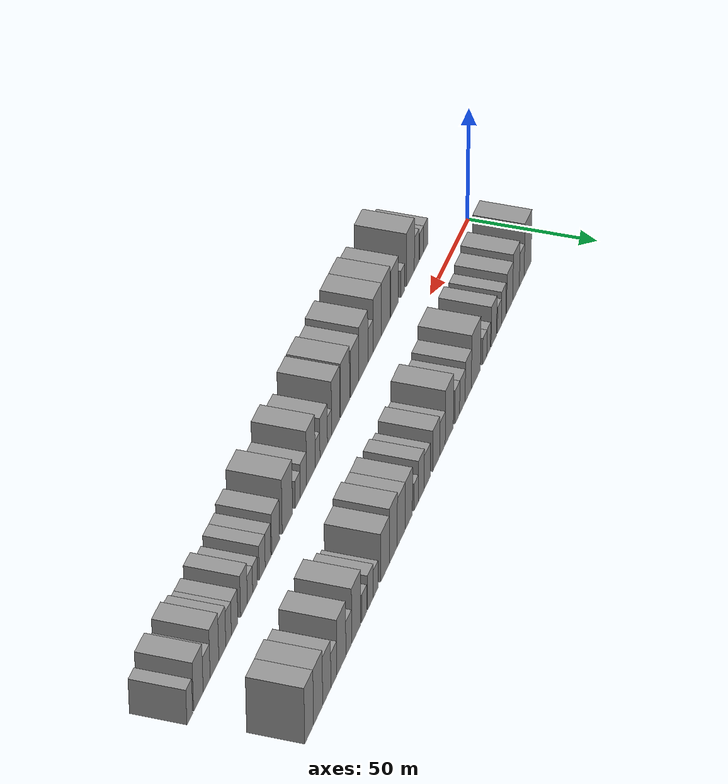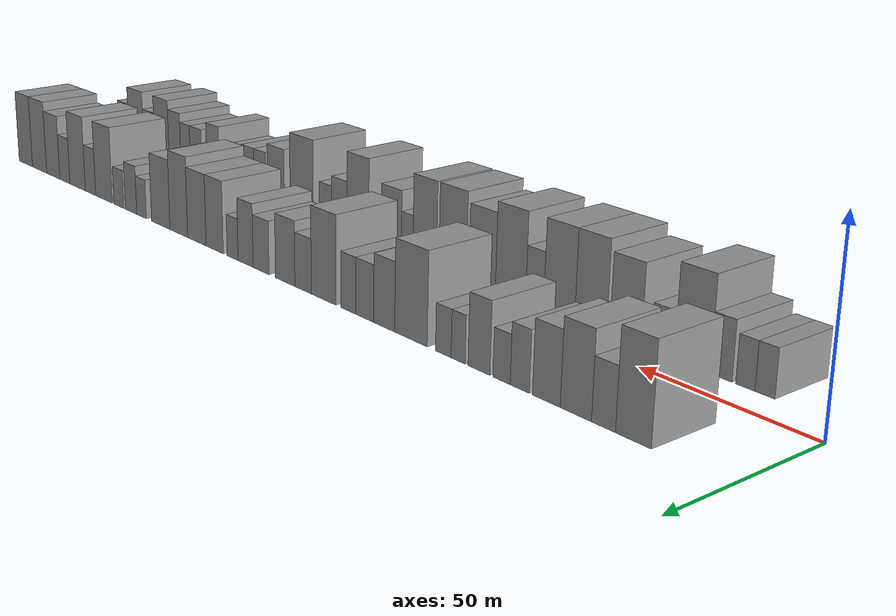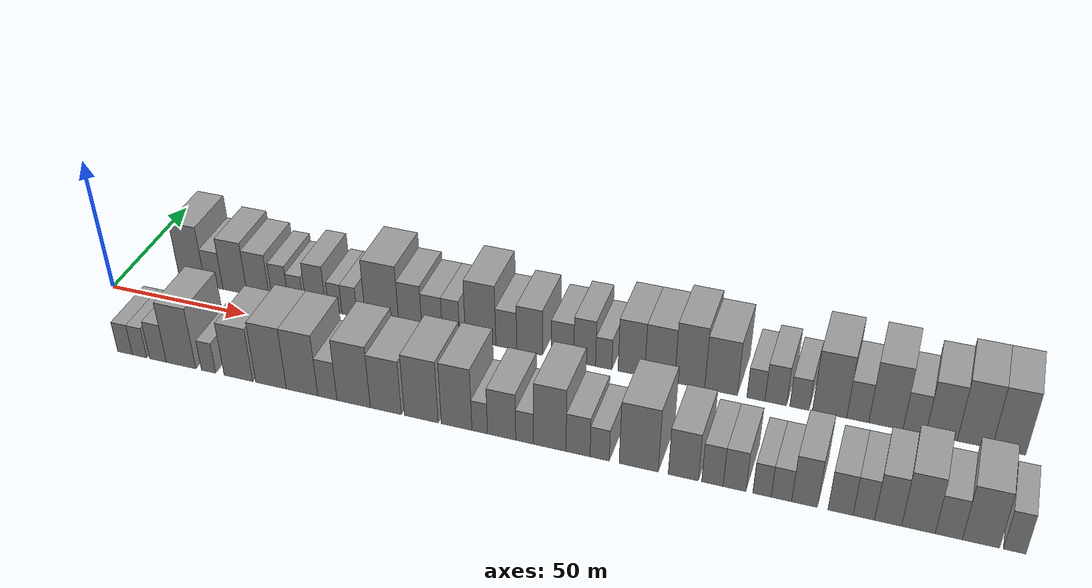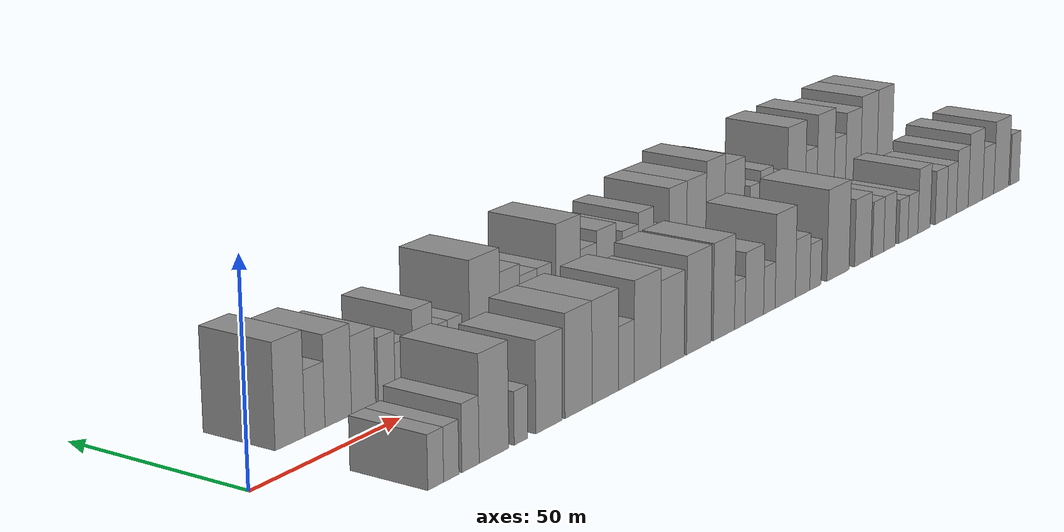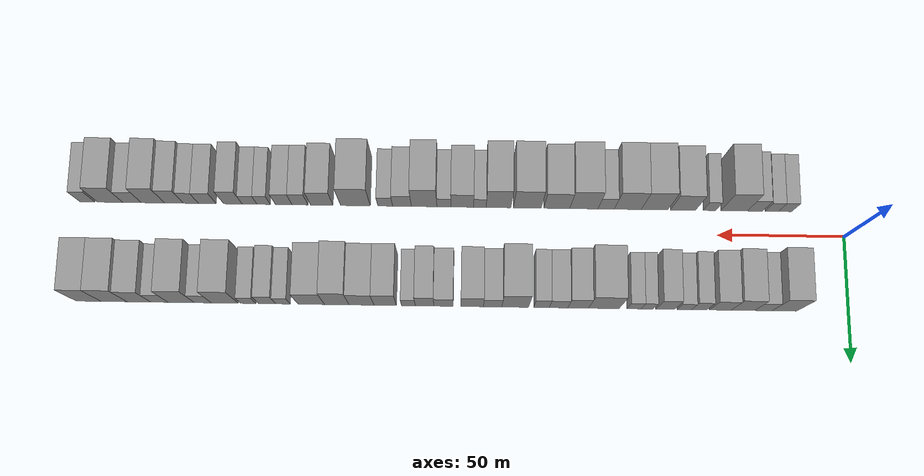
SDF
<sdf version="1.6">
 <world name="default">
  <scene>
   <sky><clouds><speed>12</speed></clouds></sky>
   <ambient>0.4 0.4 0.4 1</ambient>
   <background>0.7 0.7 0.7 1</background>
   <shadows>1</shadows>
  </scene>
  <gravity>0 0 -9.8066</gravity>
  <magnetic_field>6e-06 2.3e-05 -4.2e-05</magnetic_field>
  <physics default="0" name="default_physics" type="ode">
   <ode>
    <solver>
     <type>quick</type>
     <iters>10</iters>
     <sor>1.0</sor>
     <use_dynamic_moi_rescaling>0</use_dynamic_moi_rescaling>
    </solver>
    <constraints>
     <cfm>0</cfm>
     <erp>0.2</erp>
     <contact_max_correcting_vel>100</contact_max_correcting_vel>
     <contact_surface_layer>0.001</contact_surface_layer>
    </constraints>
   </ode>
   <max_step_size>0.004</max_step_size>
   <real_time_factor>1</real_time_factor>
   <real_time_update_rate>250</real_time_update_rate>
  </physics>
  <light name="sun" type="directional">
   <pose>0 0 10 0 0 0</pose>
   <diffuse>0.8 0.8 0.8 1</diffuse>
   <specular>0.2 0.2 0.2 1</specular>
   <attenuation>
    <range>1000</range>
    <constant>0.9</constant>
    <linear>0.01</linear>
    <quadratic>0.001</quadratic>
   </attenuation>
   <direction>-0.5 0.1 -0.9</direction>
  </light>
  <model name="building_1">
   <static>1</static>
   <pose>24.8672 20.0000 0 0.000000 0.000000 1.570796</pose>
   <link name="link">
    <pose>0 0 12.00 0 0 0</pose>
    <collision name="collision"><geometry><box><size>20.0000 9.7345 24.0000</size></box></geometry></collision>
    <visual name="visual">
     <cast_shadows>0</cast_shadows>
     <geometry><box><size>20.0000 9.7345 24.0000</size></box></geometry>
     <material>
      <script>
       <uri>model://grey_wall/materials/scripts</uri>
       <uri>model://grey_wall/materials/textures</uri>
       <name>vrc/grey_wall</name>
      </script>
     </material>
    </visual>
   </link>
  </model>
  <model name="building_2">
   <static>1</static>
   <pose>33.1002 20.0000 0 0.000000 0.000000 1.570796</pose>
   <link name="link">
    <pose>0 0 7.50 0 0 0</pose>
    <collision name="collision"><geometry><box><size>20.0000 6.7314 15.0000</size></box></geometry></collision>
    <visual name="visual">
     <cast_shadows>0</cast_shadows>
     <geometry><box><size>20.0000 6.7314 15.0000</size></box></geometry>
     <material>
      <script>
       <uri>model://grey_wall/materials/scripts</uri>
       <uri>model://grey_wall/materials/textures</uri>
       <name>vrc/grey_wall</name>
      </script>
     </material>
    </visual>
   </link>
  </model>
  <model name="building_3">
   <static>1</static>
   <pose>41.0249 20.0000 0 0.000000 0.000000 1.570796</pose>
   <link name="link">
    <pose>0 0 10.50 0 0 0</pose>
    <collision name="collision"><geometry><box><size>20.0000 9.1180 21.0000</size></box></geometry></collision>
    <visual name="visual">
     <cast_shadows>0</cast_shadows>
     <geometry><box><size>20.0000 9.1180 21.0000</size></box></geometry>
     <material>
      <script>
       <uri>model://grey_wall/materials/scripts</uri>
       <uri>model://grey_wall/materials/textures</uri>
       <name>vrc/grey_wall</name>
      </script>
     </material>
    </visual>
   </link>
  </model>
  <model name="building_4">
   <static>1</static>
   <pose>49.7908 20.0000 0 0.000000 0.000000 1.570796</pose>
   <link name="link">
    <pose>0 0 9.00 0 0 0</pose>
    <collision name="collision"><geometry><box><size>20.0000 8.4137 18.0000</size></box></geometry></collision>
    <visual name="visual">
     <cast_shadows>0</cast_shadows>
     <geometry><box><size>20.0000 8.4137 18.0000</size></box></geometry>
     <material>
      <script>
       <uri>model://grey_wall/materials/scripts</uri>
       <uri>model://grey_wall/materials/textures</uri>
       <name>vrc/grey_wall</name>
      </script>
     </material>
    </visual>
   </link>
  </model>
  <model name="building_5">
   <static>1</static>
   <pose>58.0168 20.0000 0 0.000000 0.000000 1.570796</pose>
   <link name="link">
    <pose>0 0 7.50 0 0 0</pose>
    <collision name="collision"><geometry><box><size>20.0000 6.0384 15.0000</size></box></geometry></collision>
    <visual name="visual">
     <cast_shadows>0</cast_shadows>
     <geometry><box><size>20.0000 6.0384 15.0000</size></box></geometry>
     <material>
      <script>
       <uri>model://grey_wall/materials/scripts</uri>
       <uri>model://grey_wall/materials/textures</uri>
       <name>vrc/grey_wall</name>
      </script>
     </material>
    </visual>
   </link>
  </model>
  <model name="building_6">
   <static>1</static>
   <pose>63.8101 20.0000 0 0.000000 0.000000 1.570796</pose>
   <link name="link">
    <pose>0 0 6.00 0 0 0</pose>
    <collision name="collision"><geometry><box><size>20.0000 5.5482 12.0000</size></box></geometry></collision>
    <visual name="visual">
     <cast_shadows>0</cast_shadows>
     <geometry><box><size>20.0000 5.5482 12.0000</size></box></geometry>
     <material>
      <script>
       <uri>model://grey_wall/materials/scripts</uri>
       <uri>model://grey_wall/materials/textures</uri>
       <name>vrc/grey_wall</name>
      </script>
     </material>
    </visual>
   </link>
  </model>
  <model name="building_7">
   <static>1</static>
   <pose>71.2310 20.0000 0 0.000000 0.000000 1.570796</pose>
   <link name="link">
    <pose>0 0 9.00 0 0 0</pose>
    <collision name="collision"><geometry><box><size>20.0000 7.2935 18.0000</size></box></geometry></collision>
    <visual name="visual">
     <cast_shadows>0</cast_shadows>
     <geometry><box><size>20.0000 7.2935 18.0000</size></box></geometry>
     <material>
      <script>
       <uri>model://grey_wall/materials/scripts</uri>
       <uri>model://grey_wall/materials/textures</uri>
       <name>vrc/grey_wall</name>
      </script>
     </material>
    </visual>
   </link>
  </model>
  <model name="building_8">
   <static>1</static>
   <pose>78.2869 20.0000 0 0.000000 0.000000 1.570796</pose>
   <link name="link">
    <pose>0 0 6.00 0 0 0</pose>
    <collision name="collision"><geometry><box><size>20.0000 4.8183 12.0000</size></box></geometry></collision>
    <visual name="visual">
     <cast_shadows>0</cast_shadows>
     <geometry><box><size>20.0000 4.8183 12.0000</size></box></geometry>
     <material>
      <script>
       <uri>model://grey_wall/materials/scripts</uri>
       <uri>model://grey_wall/materials/textures</uri>
       <name>vrc/grey_wall</name>
      </script>
     </material>
    </visual>
   </link>
  </model>
  <model name="building_9">
   <static>1</static>
   <pose>83.4222 20.0000 0 0.000000 0.000000 1.570796</pose>
   <link name="link">
    <pose>0 0 6.00 0 0 0</pose>
    <collision name="collision"><geometry><box><size>20.0000 5.4523 12.0000</size></box></geometry></collision>
    <visual name="visual">
     <cast_shadows>0</cast_shadows>
     <geometry><box><size>20.0000 5.4523 12.0000</size></box></geometry>
     <material>
      <script>
       <uri>model://grey_wall/materials/scripts</uri>
       <uri>model://grey_wall/materials/textures</uri>
       <name>vrc/grey_wall</name>
      </script>
     </material>
    </visual>
   </link>
  </model>
  <model name="building_10">
   <static>1</static>
   <pose>95.1413 20.0000 0 0.000000 0.000000 1.570796</pose>
   <link name="link">
    <pose>0 0 12.00 0 0 0</pose>
    <collision name="collision"><geometry><box><size>20.0000 11.9859 24.0000</size></box></geometry></collision>
    <visual name="visual">
     <cast_shadows>0</cast_shadows>
     <geometry><box><size>20.0000 11.9859 24.0000</size></box></geometry>
     <material>
      <script>
       <uri>model://grey_wall/materials/scripts</uri>
       <uri>model://grey_wall/materials/textures</uri>
       <name>vrc/grey_wall</name>
      </script>
     </material>
    </visual>
   </link>
  </model>
  <model name="building_11">
   <static>1</static>
   <pose>105.1921 20.0000 0 0.000000 0.000000 1.570796</pose>
   <link name="link">
    <pose>0 0 9.00 0 0 0</pose>
    <collision name="collision"><geometry><box><size>20.0000 8.1156 18.0000</size></box></geometry></collision>
    <visual name="visual">
     <cast_shadows>0</cast_shadows>
     <geometry><box><size>20.0000 8.1156 18.0000</size></box></geometry>
     <material>
      <script>
       <uri>model://grey_wall/materials/scripts</uri>
       <uri>model://grey_wall/materials/textures</uri>
       <name>vrc/grey_wall</name>
      </script>
     </material>
    </visual>
   </link>
  </model>
  <model name="building_12">
   <static>1</static>
   <pose>112.8450 20.0000 0 0.000000 0.000000 1.570796</pose>
   <link name="link">
    <pose>0 0 7.50 0 0 0</pose>
    <collision name="collision"><geometry><box><size>20.0000 7.1903 15.0000</size></box></geometry></collision>
    <visual name="visual">
     <cast_shadows>0</cast_shadows>
     <geometry><box><size>20.0000 7.1903 15.0000</size></box></geometry>
     <material>
      <script>
       <uri>model://grey_wall/materials/scripts</uri>
       <uri>model://grey_wall/materials/textures</uri>
       <name>vrc/grey_wall</name>
      </script>
     </material>
    </visual>
   </link>
  </model>
  <model name="building_13">
   <static>1</static>
   <pose>119.4587 20.0000 0 0.000000 0.000000 1.570796</pose>
   <link name="link">
    <pose>0 0 7.50 0 0 0</pose>
    <collision name="collision"><geometry><box><size>20.0000 6.0371 15.0000</size></box></geometry></collision>
    <visual name="visual">
     <cast_shadows>0</cast_shadows>
     <geometry><box><size>20.0000 6.0371 15.0000</size></box></geometry>
     <material>
      <script>
       <uri>model://grey_wall/materials/scripts</uri>
       <uri>model://grey_wall/materials/textures</uri>
       <name>vrc/grey_wall</name>
      </script>
     </material>
    </visual>
   </link>
  </model>
  <model name="building_14">
   <static>1</static>
   <pose>129.6978 20.0000 0 0.000000 0.000000 1.570796</pose>
   <link name="link">
    <pose>0 0 12.00 0 0 0</pose>
    <collision name="collision"><geometry><box><size>20.0000 10.4410 24.0000</size></box></geometry></collision>
    <visual name="visual">
     <cast_shadows>0</cast_shadows>
     <geometry><box><size>20.0000 10.4410 24.0000</size></box></geometry>
     <material>
      <script>
       <uri>model://grey_wall/materials/scripts</uri>
       <uri>model://grey_wall/materials/textures</uri>
       <name>vrc/grey_wall</name>
      </script>
     </material>
    </visual>
   </link>
  </model>
  <model name="building_15">
   <static>1</static>
   <pose>138.4911 20.0000 0 0.000000 0.000000 1.570796</pose>
   <link name="link">
    <pose>0 0 7.50 0 0 0</pose>
    <collision name="collision"><geometry><box><size>20.0000 7.1457 15.0000</size></box></geometry></collision>
    <visual name="visual">
     <cast_shadows>0</cast_shadows>
     <geometry><box><size>20.0000 7.1457 15.0000</size></box></geometry>
     <material>
      <script>
       <uri>model://grey_wall/materials/scripts</uri>
       <uri>model://grey_wall/materials/textures</uri>
       <name>vrc/grey_wall</name>
      </script>
     </material>
    </visual>
   </link>
  </model>
  <model name="building_16">
   <static>1</static>
   <pose>146.4306 20.0000 0 0.000000 0.000000 1.570796</pose>
   <link name="link">
    <pose>0 0 9.00 0 0 0</pose>
    <collision name="collision"><geometry><box><size>20.0000 8.7334 18.0000</size></box></geometry></collision>
    <visual name="visual">
     <cast_shadows>0</cast_shadows>
     <geometry><box><size>20.0000 8.7334 18.0000</size></box></geometry>
     <material>
      <script>
       <uri>model://grey_wall/materials/scripts</uri>
       <uri>model://grey_wall/materials/textures</uri>
       <name>vrc/grey_wall</name>
      </script>
     </material>
    </visual>
   </link>
  </model>
  <model name="building_17">
   <static>1</static>
   <pose>157.5419 20.0000 0 0.000000 0.000000 1.570796</pose>
   <link name="link">
    <pose>0 0 7.50 0 0 0</pose>
    <collision name="collision"><geometry><box><size>20.0000 7.4892 15.0000</size></box></geometry></collision>
    <visual name="visual">
     <cast_shadows>0</cast_shadows>
     <geometry><box><size>20.0000 7.4892 15.0000</size></box></geometry>
     <material>
      <script>
       <uri>model://grey_wall/materials/scripts</uri>
       <uri>model://grey_wall/materials/textures</uri>
       <name>vrc/grey_wall</name>
      </script>
     </material>
    </visual>
   </link>
  </model>
  <model name="building_18">
   <static>1</static>
   <pose>164.9100 20.0000 0 0.000000 0.000000 1.570796</pose>
   <link name="link">
    <pose>0 0 9.00 0 0 0</pose>
    <collision name="collision"><geometry><box><size>20.0000 7.2470 18.0000</size></box></geometry></collision>
    <visual name="visual">
     <cast_shadows>0</cast_shadows>
     <geometry><box><size>20.0000 7.2470 18.0000</size></box></geometry>
     <material>
      <script>
       <uri>model://grey_wall/materials/scripts</uri>
       <uri>model://grey_wall/materials/textures</uri>
       <name>vrc/grey_wall</name>
      </script>
     </material>
    </visual>
   </link>
  </model>
  <model name="building_19">
   <static>1</static>
   <pose>171.2195 20.0000 0 0.000000 0.000000 1.570796</pose>
   <link name="link">
    <pose>0 0 6.00 0 0 0</pose>
    <collision name="collision"><geometry><box><size>20.0000 5.3720 12.0000</size></box></geometry></collision>
    <visual name="visual">
     <cast_shadows>0</cast_shadows>
     <geometry><box><size>20.0000 5.3720 12.0000</size></box></geometry>
     <material>
      <script>
       <uri>model://grey_wall/materials/scripts</uri>
       <uri>model://grey_wall/materials/textures</uri>
       <name>vrc/grey_wall</name>
      </script>
     </material>
    </visual>
   </link>
  </model>
  <model name="building_20">
   <static>1</static>
   <pose>180.2682 20.0000 0 0.000000 0.000000 1.570796</pose>
   <link name="link">
    <pose>0 0 10.50 0 0 0</pose>
    <collision name="collision"><geometry><box><size>20.0000 8.7254 21.0000</size></box></geometry></collision>
    <visual name="visual">
     <cast_shadows>0</cast_shadows>
     <geometry><box><size>20.0000 8.7254 21.0000</size></box></geometry>
     <material>
      <script>
       <uri>model://grey_wall/materials/scripts</uri>
       <uri>model://grey_wall/materials/textures</uri>
       <name>vrc/grey_wall</name>
      </script>
     </material>
    </visual>
   </link>
  </model>
  <model name="building_21">
   <static>1</static>
   <pose>189.4746 20.0000 0 0.000000 0.000000 1.570796</pose>
   <link name="link">
    <pose>0 0 10.50 0 0 0</pose>
    <collision name="collision"><geometry><box><size>20.0000 9.6873 21.0000</size></box></geometry></collision>
    <visual name="visual">
     <cast_shadows>0</cast_shadows>
     <geometry><box><size>20.0000 9.6873 21.0000</size></box></geometry>
     <material>
      <script>
       <uri>model://grey_wall/materials/scripts</uri>
       <uri>model://grey_wall/materials/textures</uri>
       <name>vrc/grey_wall</name>
      </script>
     </material>
    </visual>
   </link>
  </model>
  <model name="building_22">
   <static>1</static>
   <pose>199.1271 20.0000 0 0.000000 0.000000 1.570796</pose>
   <link name="link">
    <pose>0 0 12.00 0 0 0</pose>
    <collision name="collision"><geometry><box><size>20.0000 9.6176 24.0000</size></box></geometry></collision>
    <visual name="visual">
     <cast_shadows>0</cast_shadows>
     <geometry><box><size>20.0000 9.6176 24.0000</size></box></geometry>
     <material>
      <script>
       <uri>model://grey_wall/materials/scripts</uri>
       <uri>model://grey_wall/materials/textures</uri>
       <name>vrc/grey_wall</name>
      </script>
     </material>
    </visual>
   </link>
  </model>
  <model name="building_23">
   <static>1</static>
   <pose>209.1204 20.0000 0 0.000000 0.000000 1.570796</pose>
   <link name="link">
    <pose>0 0 10.50 0 0 0</pose>
    <collision name="collision"><geometry><box><size>20.0000 10.3689 21.0000</size></box></geometry></collision>
    <visual name="visual">
     <cast_shadows>0</cast_shadows>
     <geometry><box><size>20.0000 10.3689 21.0000</size></box></geometry>
     <material>
      <script>
       <uri>model://grey_wall/materials/scripts</uri>
       <uri>model://grey_wall/materials/textures</uri>
       <name>vrc/grey_wall</name>
      </script>
     </material>
    </visual>
   </link>
  </model>
  <model name="building_24">
   <static>1</static>
   <pose>220.1237 20.0000 0 0.000000 0.000000 1.570796</pose>
   <link name="link">
    <pose>0 0 6.00 0 0 0</pose>
    <collision name="collision"><geometry><box><size>20.0000 5.6377 12.0000</size></box></geometry></collision>
    <visual name="visual">
     <cast_shadows>0</cast_shadows>
     <geometry><box><size>20.0000 5.6377 12.0000</size></box></geometry>
     <material>
      <script>
       <uri>model://grey_wall/materials/scripts</uri>
       <uri>model://grey_wall/materials/textures</uri>
       <name>vrc/grey_wall</name>
      </script>
     </material>
    </visual>
   </link>
  </model>
  <model name="building_25">
   <static>1</static>
   <pose>226.2990 20.0000 0 0.000000 0.000000 1.570796</pose>
   <link name="link">
    <pose>0 0 7.50 0 0 0</pose>
    <collision name="collision"><geometry><box><size>20.0000 6.7131 15.0000</size></box></geometry></collision>
    <visual name="visual">
     <cast_shadows>0</cast_shadows>
     <geometry><box><size>20.0000 6.7131 15.0000</size></box></geometry>
     <material>
      <script>
       <uri>model://grey_wall/materials/scripts</uri>
       <uri>model://grey_wall/materials/textures</uri>
       <name>vrc/grey_wall</name>
      </script>
     </material>
    </visual>
   </link>
  </model>
  <model name="building_26">
   <static>1</static>
   <pose>233.6371 20.0000 0 0.000000 0.000000 1.570796</pose>
   <link name="link">
    <pose>0 0 6.00 0 0 0</pose>
    <collision name="collision"><geometry><box><size>20.0000 5.9630 12.0000</size></box></geometry></collision>
    <visual name="visual">
     <cast_shadows>0</cast_shadows>
     <geometry><box><size>20.0000 5.9630 12.0000</size></box></geometry>
     <material>
      <script>
       <uri>model://grey_wall/materials/scripts</uri>
       <uri>model://grey_wall/materials/textures</uri>
       <name>vrc/grey_wall</name>
      </script>
     </material>
    </visual>
   </link>
  </model>
  <model name="building_27">
   <static>1</static>
   <pose>242.8581 20.0000 0 0.000000 0.000000 1.570796</pose>
   <link name="link">
    <pose>0 0 12.00 0 0 0</pose>
    <collision name="collision"><geometry><box><size>20.0000 10.4790 24.0000</size></box></geometry></collision>
    <visual name="visual">
     <cast_shadows>0</cast_shadows>
     <geometry><box><size>20.0000 10.4790 24.0000</size></box></geometry>
     <material>
      <script>
       <uri>model://grey_wall/materials/scripts</uri>
       <uri>model://grey_wall/materials/textures</uri>
       <name>vrc/grey_wall</name>
      </script>
     </material>
    </visual>
   </link>
  </model>
  <model name="building_28">
   <static>1</static>
   <pose>251.4309 20.0000 0 0.000000 0.000000 1.570796</pose>
   <link name="link">
    <pose>0 0 7.50 0 0 0</pose>
    <collision name="collision"><geometry><box><size>20.0000 6.6667 15.0000</size></box></geometry></collision>
    <visual name="visual">
     <cast_shadows>0</cast_shadows>
     <geometry><box><size>20.0000 6.6667 15.0000</size></box></geometry>
     <material>
      <script>
       <uri>model://grey_wall/materials/scripts</uri>
       <uri>model://grey_wall/materials/textures</uri>
       <name>vrc/grey_wall</name>
      </script>
     </material>
    </visual>
   </link>
  </model>
  <model name="building_29">
   <static>1</static>
   <pose>259.8941 20.0000 0 0.000000 0.000000 1.570796</pose>
   <link name="link">
    <pose>0 0 12.00 0 0 0</pose>
    <collision name="collision"><geometry><box><size>20.0000 10.2597 24.0000</size></box></geometry></collision>
    <visual name="visual">
     <cast_shadows>0</cast_shadows>
     <geometry><box><size>20.0000 10.2597 24.0000</size></box></geometry>
     <material>
      <script>
       <uri>model://grey_wall/materials/scripts</uri>
       <uri>model://grey_wall/materials/textures</uri>
       <name>vrc/grey_wall</name>
      </script>
     </material>
    </visual>
   </link>
  </model>
  <model name="building_30">
   <static>1</static>
   <pose>268.4107 20.0000 0 0.000000 0.000000 1.570796</pose>
   <link name="link">
    <pose>0 0 7.50 0 0 0</pose>
    <collision name="collision"><geometry><box><size>20.0000 6.7736 15.0000</size></box></geometry></collision>
    <visual name="visual">
     <cast_shadows>0</cast_shadows>
     <geometry><box><size>20.0000 6.7736 15.0000</size></box></geometry>
     <material>
      <script>
       <uri>model://grey_wall/materials/scripts</uri>
       <uri>model://grey_wall/materials/textures</uri>
       <name>vrc/grey_wall</name>
      </script>
     </material>
    </visual>
   </link>
  </model>
  <model name="building_31">
   <static>1</static>
   <pose>276.3844 20.0000 0 0.000000 0.000000 1.570796</pose>
   <link name="link">
    <pose>0 0 10.50 0 0 0</pose>
    <collision name="collision"><geometry><box><size>20.0000 9.1739 21.0000</size></box></geometry></collision>
    <visual name="visual">
     <cast_shadows>0</cast_shadows>
     <geometry><box><size>20.0000 9.1739 21.0000</size></box></geometry>
     <material>
      <script>
       <uri>model://grey_wall/materials/scripts</uri>
       <uri>model://grey_wall/materials/textures</uri>
       <name>vrc/grey_wall</name>
      </script>
     </material>
    </visual>
   </link>
  </model>
  <model name="building_32">
   <static>1</static>
   <pose>286.0506 20.0000 0 0.000000 0.000000 1.570796</pose>
   <link name="link">
    <pose>0 0 12.00 0 0 0</pose>
    <collision name="collision"><geometry><box><size>20.0000 10.1586 24.0000</size></box></geometry></collision>
    <visual name="visual">
     <cast_shadows>0</cast_shadows>
     <geometry><box><size>20.0000 10.1586 24.0000</size></box></geometry>
     <material>
      <script>
       <uri>model://grey_wall/materials/scripts</uri>
       <uri>model://grey_wall/materials/textures</uri>
       <name>vrc/grey_wall</name>
      </script>
     </material>
    </visual>
   </link>
  </model>
  <model name="building_33">
   <static>1</static>
   <pose>295.9766 20.0000 0 0.000000 0.000000 1.570796</pose>
   <link name="link">
    <pose>0 0 12.00 0 0 0</pose>
    <collision name="collision"><geometry><box><size>20.0000 9.6934 24.0000</size></box></geometry></collision>
    <visual name="visual">
     <cast_shadows>0</cast_shadows>
     <geometry><box><size>20.0000 9.6934 24.0000</size></box></geometry>
     <material>
      <script>
       <uri>model://grey_wall/materials/scripts</uri>
       <uri>model://grey_wall/materials/textures</uri>
       <name>vrc/grey_wall</name>
      </script>
     </material>
    </visual>
   </link>
  </model>
  <model name="building_34">
   <static>1</static>
   <pose>22.6685 -20.0000 0 0.000000 0.000000 1.570796</pose>
   <link name="link">
    <pose>0 0 6.00 0 0 0</pose>
    <collision name="collision"><geometry><box><size>20.0000 5.3369 12.0000</size></box></geometry></collision>
    <visual name="visual">
     <cast_shadows>0</cast_shadows>
     <geometry><box><size>20.0000 5.3369 12.0000</size></box></geometry>
     <material>
      <script>
       <uri>model://grey_wall/materials/scripts</uri>
       <uri>model://grey_wall/materials/textures</uri>
       <name>vrc/grey_wall</name>
      </script>
     </material>
    </visual>
   </link>
  </model>
  <model name="building_35">
   <static>1</static>
   <pose>27.9637 -20.0000 0 0.000000 0.000000 1.570796</pose>
   <link name="link">
    <pose>0 0 6.00 0 0 0</pose>
    <collision name="collision"><geometry><box><size>20.0000 5.2535 12.0000</size></box></geometry></collision>
    <visual name="visual">
     <cast_shadows>0</cast_shadows>
     <geometry><box><size>20.0000 5.2535 12.0000</size></box></geometry>
     <material>
      <script>
       <uri>model://grey_wall/materials/scripts</uri>
       <uri>model://grey_wall/materials/textures</uri>
       <name>vrc/grey_wall</name>
      </script>
     </material>
    </visual>
   </link>
  </model>
  <model name="building_36">
   <static>1</static>
   <pose>34.6058 -20.0000 0 0.000000 0.000000 1.570796</pose>
   <link name="link">
    <pose>0 0 7.50 0 0 0</pose>
    <collision name="collision"><geometry><box><size>20.0000 6.0309 15.0000</size></box></geometry></collision>
    <visual name="visual">
     <cast_shadows>0</cast_shadows>
     <geometry><box><size>20.0000 6.0309 15.0000</size></box></geometry>
     <material>
      <script>
       <uri>model://grey_wall/materials/scripts</uri>
       <uri>model://grey_wall/materials/textures</uri>
       <name>vrc/grey_wall</name>
      </script>
     </material>
    </visual>
   </link>
  </model>
  <model name="building_37">
   <static>1</static>
   <pose>42.8942 -20.0000 0 0.000000 0.000000 1.570796</pose>
   <link name="link">
    <pose>0 0 12.00 0 0 0</pose>
    <collision name="collision"><geometry><box><size>20.0000 10.5458 24.0000</size></box></geometry></collision>
    <visual name="visual">
     <cast_shadows>0</cast_shadows>
     <geometry><box><size>20.0000 10.5458 24.0000</size></box></geometry>
     <material>
      <script>
       <uri>model://grey_wall/materials/scripts</uri>
       <uri>model://grey_wall/materials/textures</uri>
       <name>vrc/grey_wall</name>
      </script>
     </material>
    </visual>
   </link>
  </model>
  <model name="building_38">
   <static>1</static>
   <pose>52.6691 -20.0000 0 0.000000 0.000000 1.570796</pose>
   <link name="link">
    <pose>0 0 6.00 0 0 0</pose>
    <collision name="collision"><geometry><box><size>20.0000 5.0041 12.0000</size></box></geometry></collision>
    <visual name="visual">
     <cast_shadows>0</cast_shadows>
     <geometry><box><size>20.0000 5.0041 12.0000</size></box></geometry>
     <material>
      <script>
       <uri>model://grey_wall/materials/scripts</uri>
       <uri>model://grey_wall/materials/textures</uri>
       <name>vrc/grey_wall</name>
      </script>
     </material>
    </visual>
   </link>
  </model>
  <model name="building_39">
   <static>1</static>
   <pose>63.1974 -20.0000 0 0.000000 0.000000 1.570796</pose>
   <link name="link">
    <pose>0 0 10.50 0 0 0</pose>
    <collision name="collision"><geometry><box><size>20.0000 10.0524 21.0000</size></box></geometry></collision>
    <visual name="visual">
     <cast_shadows>0</cast_shadows>
     <geometry><box><size>20.0000 10.0524 21.0000</size></box></geometry>
     <material>
      <script>
       <uri>model://grey_wall/materials/scripts</uri>
       <uri>model://grey_wall/materials/textures</uri>
       <name>vrc/grey_wall</name>
      </script>
     </material>
    </visual>
   </link>
  </model>
  <model name="building_40">
   <static>1</static>
   <pose>74.5161 -20.0000 0 0.000000 0.000000 1.570796</pose>
   <link name="link">
    <pose>0 0 12.00 0 0 0</pose>
    <collision name="collision"><geometry><box><size>20.0000 10.5849 24.0000</size></box></geometry></collision>
    <visual name="visual">
     <cast_shadows>0</cast_shadows>
     <geometry><box><size>20.0000 10.5849 24.0000</size></box></geometry>
     <material>
      <script>
       <uri>model://grey_wall/materials/scripts</uri>
       <uri>model://grey_wall/materials/textures</uri>
       <name>vrc/grey_wall</name>
      </script>
     </material>
    </visual>
   </link>
  </model>
  <model name="building_41">
   <static>1</static>
   <pose>85.1882 -20.0000 0 0.000000 0.000000 1.570796</pose>
   <link name="link">
    <pose>0 0 12.00 0 0 0</pose>
    <collision name="collision"><geometry><box><size>20.0000 10.7592 24.0000</size></box></geometry></collision>
    <visual name="visual">
     <cast_shadows>0</cast_shadows>
     <geometry><box><size>20.0000 10.7592 24.0000</size></box></geometry>
     <material>
      <script>
       <uri>model://grey_wall/materials/scripts</uri>
       <uri>model://grey_wall/materials/textures</uri>
       <name>vrc/grey_wall</name>
      </script>
     </material>
    </visual>
   </link>
  </model>
  <model name="building_42">
   <static>1</static>
   <pose>93.7894 -20.0000 0 0.000000 0.000000 1.570796</pose>
   <link name="link">
    <pose>0 0 7.50 0 0 0</pose>
    <collision name="collision"><geometry><box><size>20.0000 6.4432 15.0000</size></box></geometry></collision>
    <visual name="visual">
     <cast_shadows>0</cast_shadows>
     <geometry><box><size>20.0000 6.4432 15.0000</size></box></geometry>
     <material>
      <script>
       <uri>model://grey_wall/materials/scripts</uri>
       <uri>model://grey_wall/materials/textures</uri>
       <name>vrc/grey_wall</name>
      </script>
     </material>
    </visual>
   </link>
  </model>
  <model name="building_43">
   <static>1</static>
   <pose>102.6106 -20.0000 0 0.000000 0.000000 1.570796</pose>
   <link name="link">
    <pose>0 0 12.00 0 0 0</pose>
    <collision name="collision"><geometry><box><size>20.0000 11.1993 24.0000</size></box></geometry></collision>
    <visual name="visual">
     <cast_shadows>0</cast_shadows>
     <geometry><box><size>20.0000 11.1993 24.0000</size></box></geometry>
     <material>
      <script>
       <uri>model://grey_wall/materials/scripts</uri>
       <uri>model://grey_wall/materials/textures</uri>
       <name>vrc/grey_wall</name>
      </script>
     </material>
    </visual>
   </link>
  </model>
  <model name="building_44">
   <static>1</static>
   <pose>113.3505 -20.0000 0 0.000000 0.000000 1.570796</pose>
   <link name="link">
    <pose>0 0 10.50 0 0 0</pose>
    <collision name="collision"><geometry><box><size>20.0000 10.2805 21.0000</size></box></geometry></collision>
    <visual name="visual">
     <cast_shadows>0</cast_shadows>
     <geometry><box><size>20.0000 10.2805 21.0000</size></box></geometry>
     <material>
      <script>
       <uri>model://grey_wall/materials/scripts</uri>
       <uri>model://grey_wall/materials/textures</uri>
       <name>vrc/grey_wall</name>
      </script>
     </material>
    </visual>
   </link>
  </model>
  <model name="building_45">
   <static>1</static>
   <pose>125.0140 -20.0000 0 0.000000 0.000000 1.570796</pose>
   <link name="link">
    <pose>0 0 12.00 0 0 0</pose>
    <collision name="collision"><geometry><box><size>20.0000 11.0466 24.0000</size></box></geometry></collision>
    <visual name="visual">
     <cast_shadows>0</cast_shadows>
     <geometry><box><size>20.0000 11.0466 24.0000</size></box></geometry>
     <material>
      <script>
       <uri>model://grey_wall/materials/scripts</uri>
       <uri>model://grey_wall/materials/textures</uri>
       <name>vrc/grey_wall</name>
      </script>
     </material>
    </visual>
   </link>
  </model>
  <model name="building_46">
   <static>1</static>
   <pose>136.4713 -20.0000 0 0.000000 0.000000 1.570796</pose>
   <link name="link">
    <pose>0 0 12.00 0 0 0</pose>
    <collision name="collision"><geometry><box><size>20.0000 9.8679 24.0000</size></box></geometry></collision>
    <visual name="visual">
     <cast_shadows>0</cast_shadows>
     <geometry><box><size>20.0000 9.8679 24.0000</size></box></geometry>
     <material>
      <script>
       <uri>model://grey_wall/materials/scripts</uri>
       <uri>model://grey_wall/materials/textures</uri>
       <name>vrc/grey_wall</name>
      </script>
     </material>
    </visual>
   </link>
  </model>
  <model name="building_47">
   <static>1</static>
   <pose>143.8882 -20.0000 0 0.000000 0.000000 1.570796</pose>
   <link name="link">
    <pose>0 0 6.00 0 0 0</pose>
    <collision name="collision"><geometry><box><size>20.0000 4.9659 12.0000</size></box></geometry></collision>
    <visual name="visual">
     <cast_shadows>0</cast_shadows>
     <geometry><box><size>20.0000 4.9659 12.0000</size></box></geometry>
     <material>
      <script>
       <uri>model://grey_wall/materials/scripts</uri>
       <uri>model://grey_wall/materials/textures</uri>
       <name>vrc/grey_wall</name>
      </script>
     </material>
    </visual>
   </link>
  </model>
  <model name="building_48">
   <static>1</static>
   <pose>150.8510 -20.0000 0 0.000000 0.000000 1.570796</pose>
   <link name="link">
    <pose>0 0 9.00 0 0 0</pose>
    <collision name="collision"><geometry><box><size>20.0000 8.9597 18.0000</size></box></geometry></collision>
    <visual name="visual">
     <cast_shadows>0</cast_shadows>
     <geometry><box><size>20.0000 8.9597 18.0000</size></box></geometry>
     <material>
      <script>
       <uri>model://grey_wall/materials/scripts</uri>
       <uri>model://grey_wall/materials/textures</uri>
       <name>vrc/grey_wall</name>
      </script>
     </material>
    </visual>
   </link>
  </model>
  <model name="building_49">
   <static>1</static>
   <pose>158.1245 -20.0000 0 0.000000 0.000000 1.570796</pose>
   <link name="link">
    <pose>0 0 6.00 0 0 0</pose>
    <collision name="collision"><geometry><box><size>20.0000 5.5873 12.0000</size></box></geometry></collision>
    <visual name="visual">
     <cast_shadows>0</cast_shadows>
     <geometry><box><size>20.0000 5.5873 12.0000</size></box></geometry>
     <material>
      <script>
       <uri>model://grey_wall/materials/scripts</uri>
       <uri>model://grey_wall/materials/textures</uri>
       <name>vrc/grey_wall</name>
      </script>
     </material>
    </visual>
   </link>
  </model>
  <model name="building_50">
   <static>1</static>
   <pose>165.9879 -20.0000 0 0.000000 0.000000 1.570796</pose>
   <link name="link">
    <pose>0 0 12.00 0 0 0</pose>
    <collision name="collision"><geometry><box><size>20.0000 10.1395 24.0000</size></box></geometry></collision>
    <visual name="visual">
     <cast_shadows>0</cast_shadows>
     <geometry><box><size>20.0000 10.1395 24.0000</size></box></geometry>
     <material>
      <script>
       <uri>model://grey_wall/materials/scripts</uri>
       <uri>model://grey_wall/materials/textures</uri>
       <name>vrc/grey_wall</name>
      </script>
     </material>
    </visual>
   </link>
  </model>
  <model name="building_51">
   <static>1</static>
   <pose>174.7690 -20.0000 0 0.000000 0.000000 1.570796</pose>
   <link name="link">
    <pose>0 0 7.50 0 0 0</pose>
    <collision name="collision"><geometry><box><size>20.0000 7.4229 15.0000</size></box></geometry></collision>
    <visual name="visual">
     <cast_shadows>0</cast_shadows>
     <geometry><box><size>20.0000 7.4229 15.0000</size></box></geometry>
     <material>
      <script>
       <uri>model://grey_wall/materials/scripts</uri>
       <uri>model://grey_wall/materials/textures</uri>
       <name>vrc/grey_wall</name>
      </script>
     </material>
    </visual>
   </link>
  </model>
  <model name="building_52">
   <static>1</static>
   <pose>181.4271 -20.0000 0 0.000000 0.000000 1.570796</pose>
   <link name="link">
    <pose>0 0 6.00 0 0 0</pose>
    <collision name="collision"><geometry><box><size>20.0000 5.8933 12.0000</size></box></geometry></collision>
    <visual name="visual">
     <cast_shadows>0</cast_shadows>
     <geometry><box><size>20.0000 5.8933 12.0000</size></box></geometry>
     <material>
      <script>
       <uri>model://grey_wall/materials/scripts</uri>
       <uri>model://grey_wall/materials/textures</uri>
       <name>vrc/grey_wall</name>
      </script>
     </material>
    </visual>
   </link>
  </model>
  <model name="building_53">
   <static>1</static>
   <pose>193.2833 -20.0000 0 0.000000 0.000000 1.570796</pose>
   <link name="link">
    <pose>0 0 12.00 0 0 0</pose>
    <collision name="collision"><geometry><box><size>20.0000 11.8191 24.0000</size></box></geometry></collision>
    <visual name="visual">
     <cast_shadows>0</cast_shadows>
     <geometry><box><size>20.0000 11.8191 24.0000</size></box></geometry>
     <material>
      <script>
       <uri>model://grey_wall/materials/scripts</uri>
       <uri>model://grey_wall/materials/textures</uri>
       <name>vrc/grey_wall</name>
      </script>
     </material>
    </visual>
   </link>
  </model>
  <model name="building_54">
   <static>1</static>
   <pose>206.6568 -20.0000 0 0.000000 0.000000 1.570796</pose>
   <link name="link">
    <pose>0 0 9.00 0 0 0</pose>
    <collision name="collision"><geometry><box><size>20.0000 8.9279 18.0000</size></box></geometry></collision>
    <visual name="visual">
     <cast_shadows>0</cast_shadows>
     <geometry><box><size>20.0000 8.9279 18.0000</size></box></geometry>
     <material>
      <script>
       <uri>model://grey_wall/materials/scripts</uri>
       <uri>model://grey_wall/materials/textures</uri>
       <name>vrc/grey_wall</name>
      </script>
     </material>
    </visual>
   </link>
  </model>
  <model name="building_55">
   <static>1</static>
   <pose>215.2826 -20.0000 0 0.000000 0.000000 1.570796</pose>
   <link name="link">
    <pose>0 0 7.50 0 0 0</pose>
    <collision name="collision"><geometry><box><size>20.0000 6.3238 15.0000</size></box></geometry></collision>
    <visual name="visual">
     <cast_shadows>0</cast_shadows>
     <geometry><box><size>20.0000 6.3238 15.0000</size></box></geometry>
     <material>
      <script>
       <uri>model://grey_wall/materials/scripts</uri>
       <uri>model://grey_wall/materials/textures</uri>
       <name>vrc/grey_wall</name>
      </script>
     </material>
    </visual>
   </link>
  </model>
  <model name="building_56">
   <static>1</static>
   <pose>221.7732 -20.0000 0 0.000000 0.000000 1.570796</pose>
   <link name="link">
    <pose>0 0 7.50 0 0 0</pose>
    <collision name="collision"><geometry><box><size>20.0000 6.6573 15.0000</size></box></geometry></collision>
    <visual name="visual">
     <cast_shadows>0</cast_shadows>
     <geometry><box><size>20.0000 6.6573 15.0000</size></box></geometry>
     <material>
      <script>
       <uri>model://grey_wall/materials/scripts</uri>
       <uri>model://grey_wall/materials/textures</uri>
       <name>vrc/grey_wall</name>
      </script>
     </material>
    </visual>
   </link>
  </model>
  <model name="building_57">
   <static>1</static>
   <pose>229.7587 -20.0000 0 0.000000 0.000000 1.570796</pose>
   <link name="link">
    <pose>0 0 6.00 0 0 0</pose>
    <collision name="collision"><geometry><box><size>20.0000 5.3136 12.0000</size></box></geometry></collision>
    <visual name="visual">
     <cast_shadows>0</cast_shadows>
     <geometry><box><size>20.0000 5.3136 12.0000</size></box></geometry>
     <material>
      <script>
       <uri>model://grey_wall/materials/scripts</uri>
       <uri>model://grey_wall/materials/textures</uri>
       <name>vrc/grey_wall</name>
      </script>
     </material>
    </visual>
   </link>
  </model>
  <model name="building_58">
   <static>1</static>
   <pose>235.3488 -20.0000 0 0.000000 0.000000 1.570796</pose>
   <link name="link">
    <pose>0 0 6.00 0 0 0</pose>
    <collision name="collision"><geometry><box><size>20.0000 5.8667 12.0000</size></box></geometry></collision>
    <visual name="visual">
     <cast_shadows>0</cast_shadows>
     <geometry><box><size>20.0000 5.8667 12.0000</size></box></geometry>
     <material>
      <script>
       <uri>model://grey_wall/materials/scripts</uri>
       <uri>model://grey_wall/materials/textures</uri>
       <name>vrc/grey_wall</name>
      </script>
     </material>
    </visual>
   </link>
  </model>
  <model name="building_59">
   <static>1</static>
   <pose>241.9731 -20.0000 0 0.000000 0.000000 1.570796</pose>
   <link name="link">
    <pose>0 0 9.00 0 0 0</pose>
    <collision name="collision"><geometry><box><size>20.0000 7.3818 18.0000</size></box></geometry></collision>
    <visual name="visual">
     <cast_shadows>0</cast_shadows>
     <geometry><box><size>20.0000 7.3818 18.0000</size></box></geometry>
     <material>
      <script>
       <uri>model://grey_wall/materials/scripts</uri>
       <uri>model://grey_wall/materials/textures</uri>
       <name>vrc/grey_wall</name>
      </script>
     </material>
    </visual>
   </link>
  </model>
  <model name="building_60">
   <static>1</static>
   <pose>252.1902 -20.0000 0 0.000000 0.000000 1.570796</pose>
   <link name="link">
    <pose>0 0 7.50 0 0 0</pose>
    <collision name="collision"><geometry><box><size>20.0000 7.0524 15.0000</size></box></geometry></collision>
    <visual name="visual">
     <cast_shadows>0</cast_shadows>
     <geometry><box><size>20.0000 7.0524 15.0000</size></box></geometry>
     <material>
      <script>
       <uri>model://grey_wall/materials/scripts</uri>
       <uri>model://grey_wall/materials/textures</uri>
       <name>vrc/grey_wall</name>
      </script>
     </material>
    </visual>
   </link>
  </model>
  <model name="building_61">
   <static>1</static>
   <pose>258.7217 -20.0000 0 0.000000 0.000000 1.570796</pose>
   <link name="link">
    <pose>0 0 7.50 0 0 0</pose>
    <collision name="collision"><geometry><box><size>20.0000 6.0106 15.0000</size></box></geometry></collision>
    <visual name="visual">
     <cast_shadows>0</cast_shadows>
     <geometry><box><size>20.0000 6.0106 15.0000</size></box></geometry>
     <material>
      <script>
       <uri>model://grey_wall/materials/scripts</uri>
       <uri>model://grey_wall/materials/textures</uri>
       <name>vrc/grey_wall</name>
      </script>
     </material>
    </visual>
   </link>
  </model>
  <model name="building_62">
   <static>1</static>
   <pose>265.4636 -20.0000 0 0.000000 0.000000 1.570796</pose>
   <link name="link">
    <pose>0 0 9.00 0 0 0</pose>
    <collision name="collision"><geometry><box><size>20.0000 7.4732 18.0000</size></box></geometry></collision>
    <visual name="visual">
     <cast_shadows>0</cast_shadows>
     <geometry><box><size>20.0000 7.4732 18.0000</size></box></geometry>
     <material>
      <script>
       <uri>model://grey_wall/materials/scripts</uri>
       <uri>model://grey_wall/materials/textures</uri>
       <name>vrc/grey_wall</name>
      </script>
     </material>
    </visual>
   </link>
  </model>
  <model name="building_63">
   <static>1</static>
   <pose>273.8316 -20.0000 0 0.000000 0.000000 1.570796</pose>
   <link name="link">
    <pose>0 0 10.50 0 0 0</pose>
    <collision name="collision"><geometry><box><size>20.0000 9.2628 21.0000</size></box></geometry></collision>
    <visual name="visual">
     <cast_shadows>0</cast_shadows>
     <geometry><box><size>20.0000 9.2628 21.0000</size></box></geometry>
     <material>
      <script>
       <uri>model://grey_wall/materials/scripts</uri>
       <uri>model://grey_wall/materials/textures</uri>
       <name>vrc/grey_wall</name>
      </script>
     </material>
    </visual>
   </link>
  </model>
  <model name="building_64">
   <static>1</static>
   <pose>282.1488 -20.0000 0 0.000000 0.000000 1.570796</pose>
   <link name="link">
    <pose>0 0 7.50 0 0 0</pose>
    <collision name="collision"><geometry><box><size>20.0000 7.3715 15.0000</size></box></geometry></collision>
    <visual name="visual">
     <cast_shadows>0</cast_shadows>
     <geometry><box><size>20.0000 7.3715 15.0000</size></box></geometry>
     <material>
      <script>
       <uri>model://grey_wall/materials/scripts</uri>
       <uri>model://grey_wall/materials/textures</uri>
       <name>vrc/grey_wall</name>
      </script>
     </material>
    </visual>
   </link>
  </model>
  <model name="building_65">
   <static>1</static>
   <pose>290.8490 -20.0000 0 0.000000 0.000000 1.570796</pose>
   <link name="link">
    <pose>0 0 10.50 0 0 0</pose>
    <collision name="collision"><geometry><box><size>20.0000 10.0290 21.0000</size></box></geometry></collision>
    <visual name="visual">
     <cast_shadows>0</cast_shadows>
     <geometry><box><size>20.0000 10.0290 21.0000</size></box></geometry>
     <material>
      <script>
       <uri>model://grey_wall/materials/scripts</uri>
       <uri>model://grey_wall/materials/textures</uri>
       <name>vrc/grey_wall</name>
      </script>
     </material>
    </visual>
   </link>
  </model>
  <model name="building_66">
   <static>1</static>
   <pose>299.8639 -20.0000 0 0.000000 0.000000 1.570796</pose>
   <link name="link">
    <pose>0 0 7.50 0 0 0</pose>
    <collision name="collision"><geometry><box><size>20.0000 6.0010 15.0000</size></box></geometry></collision>
    <visual name="visual">
     <cast_shadows>0</cast_shadows>
     <geometry><box><size>20.0000 6.0010 15.0000</size></box></geometry>
     <material>
      <script>
       <uri>model://grey_wall/materials/scripts</uri>
       <uri>model://grey_wall/materials/textures</uri>
       <name>vrc/grey_wall</name>
      </script>
     </material>
    </visual>
   </link>
  </model>
 </world>
</sdf>
